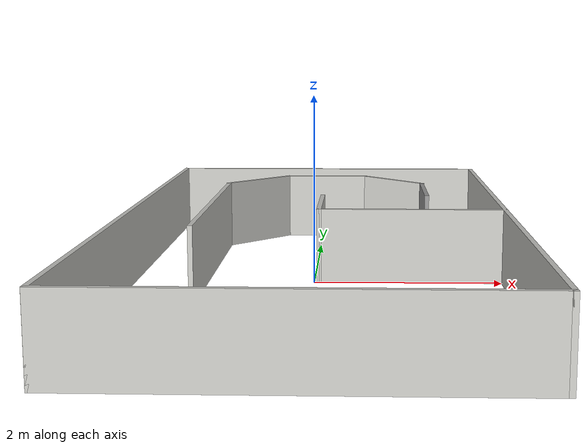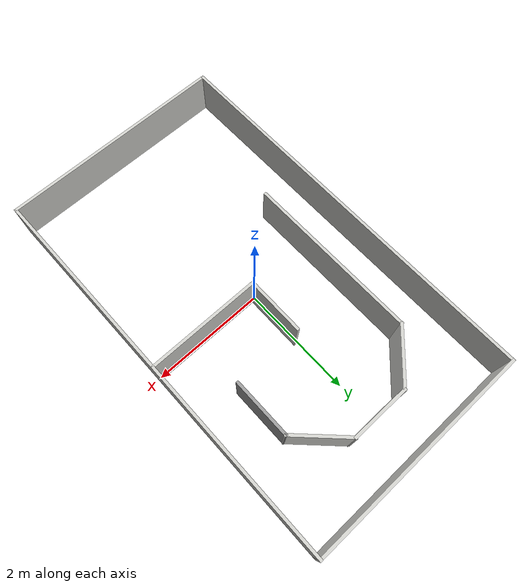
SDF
<?xml version='1.0'?>
<sdf version='1.6'>
  <model name='ground'>
    <pose frame=''>0.0375 -0.003 0 0 -0 0</pose>
    <link name='Wall_11'>
      <collision name='Wall_11_Collision'>
        <geometry>
          <box>
            <size>7.05 0.05 0.8</size>
          </box>
        </geometry>
        <pose frame=''>0 0 0.4 0 -0 0</pose>
      </collision>
      <visual name='Wall_11_Visual'>
        <pose frame=''>0 0 0.4 0 -0 0</pose>
        <geometry>
          <box>
            <size>7.05 0.05 0.8</size>
          </box>
        </geometry>
        <material>
          <script>
            <uri>file://media/materials/scripts/gazebo.material</uri>
            <name>Gazebo/CeilingTiled</name>
          </script>
          <ambient>1 1 1 1</ambient>
        </material>
        <meta>
          <layer>0</layer>
        </meta>
      </visual>
      <pose frame=''>-1.9875 0 0 0 0 -1.5708</pose>
    </link>
    <link name='Wall_13'>
      <collision name='Wall_13_Collision'>
        <geometry>
          <box>
            <size>3.05542 0.05 0.8</size>
          </box>
        </geometry>
        <pose frame=''>0 0 0.4 0 -0 0</pose>
      </collision>
      <visual name='Wall_13_Visual'>
        <pose frame=''>0 0 0.4 0 -0 0</pose>
        <geometry>
          <box>
            <size>3.05542 0.05 0.8</size>
          </box>
        </geometry>
        <material>
          <script>
            <uri>file://media/materials/scripts/gazebo.material</uri>
            <name>Gazebo/CeilingTiled</name>
          </script>
          <ambient>1 1 1 1</ambient>
        </material>
        <meta>
          <layer>0</layer>
        </meta>
      </visual>
      <pose frame=''>-1.2005 0.5035 0 0 -0 1.5708</pose>
    </link>
    <link name='Wall_15'>
      <collision name='Wall_15_Collision'>
        <geometry>
          <box>
            <size>1.05361 0.05 0.8</size>
          </box>
        </geometry>
        <pose frame=''>0 0 0.4 0 -0 0</pose>
      </collision>
      <visual name='Wall_15_Visual'>
        <pose frame=''>0 0 0.4 0 -0 0</pose>
        <geometry>
          <box>
            <size>1.05361 0.05 0.8</size>
          </box>
        </geometry>
        <material>
          <script>
            <uri>file://media/materials/scripts/gazebo.material</uri>
            <name>Gazebo/CeilingTiled</name>
          </script>
          <ambient>1 1 1 1</ambient>
        </material>
        <meta>
          <layer>0</layer>
        </meta>
      </visual>
      <pose frame=''>-0.8465 2.362 0 0 -0 0.788215</pose>
    </link>
    <link name='Wall_17'>
      <collision name='Wall_17_Collision'>
        <geometry>
          <box>
            <size>1.05915 0.05 0.8</size>
          </box>
        </geometry>
        <pose frame=''>0 0 0.4 0 -0 0</pose>
      </collision>
      <visual name='Wall_17_Visual'>
        <pose frame=''>0 0 0.4 0 -0 0</pose>
        <geometry>
          <box>
            <size>1.05915 0.05 0.8</size>
          </box>
        </geometry>
        <material>
          <script>
            <uri>file://media/materials/scripts/gazebo.material</uri>
            <name>Gazebo/CeilingTiled</name>
          </script>
          <ambient>1 1 1 1</ambient>
        </material>
        <meta>
          <layer>0</layer>
        </meta>
      </visual>
      <pose frame=''>0.012 2.718 0 0 -0 0</pose>
    </link>
    <link name='Wall_19'>
      <collision name='Wall_19_Collision'>
        <geometry>
          <box>
            <size>1.03436 0.05 0.8</size>
          </box>
        </geometry>
        <pose frame=''>0 0 0.4 0 -0 0</pose>
      </collision>
      <visual name='Wall_19_Visual'>
        <pose frame=''>0 0 0.4 0 -0 0</pose>
        <geometry>
          <box>
            <size>1.03436 0.05 0.8</size>
          </box>
        </geometry>
        <material>
          <script>
            <uri>file://media/materials/scripts/gazebo.material</uri>
            <name>Gazebo/CeilingTiled</name>
          </script>
          <ambient>1 1 1 1</ambient>
        </material>
        <meta>
          <layer>0</layer>
        </meta>
      </visual>
      <pose frame=''>0.8685 2.374 0 0 0 -0.773904</pose>
    </link>
    <link name='Wall_21'>
      <collision name='Wall_21_Collision'>
        <geometry>
          <box>
            <size>1.05629 0.05 0.8</size>
          </box>
        </geometry>
        <pose frame=''>0 0 0.4 0 -0 0</pose>
      </collision>
      <visual name='Wall_21_Visual'>
        <pose frame=''>0 0 0.4 0 -0 0</pose>
        <geometry>
          <box>
            <size>1.05629 0.05 0.8</size>
          </box>
        </geometry>
        <material>
          <script>
            <uri>file://media/materials/scripts/gazebo.material</uri>
            <name>Gazebo/Grey</name>
          </script>
          <ambient>1 1 1 1</ambient>
        </material>
        <meta>
          <layer>0</layer>
        </meta>
      </visual>
      <pose frame=''>1.2205 1.527 0 0 0 -1.5708</pose>
    </link>
    <link name='Wall_23'>
      <collision name='Wall_23_Collision'>
        <geometry>
          <box>
            <size>1.05 0.05 0.8</size>
          </box>
        </geometry>
        <pose frame=''>0 0 0.4 0 -0 0</pose>
      </collision>
      <visual name='Wall_23_Visual'>
        <pose frame=''>0 0 0.4 0 -0 0</pose>
        <geometry>
          <box>
            <size>1.05 0.05 0.8</size>
          </box>
        </geometry>
        <material>
          <script>
            <uri>file://media/materials/scripts/gazebo.material</uri>
            <name>Gazebo/CeilingTiled</name>
          </script>
          <ambient>1 1 1 1</ambient>
        </material>
        <meta>
          <layer>0</layer>
        </meta>
      </visual>
      <pose frame=''>0.0125 0.513 0 0 0 -1.5768</pose>
    </link>
    <link name='Wall_24'>
      <collision name='Wall_24_Collision'>
        <geometry>
          <box>
            <size>2.021 0.05 0.8</size>
          </box>
        </geometry>
        <pose frame=''>0 0 0.4 0 -0 0</pose>
      </collision>
      <visual name='Wall_24_Visual'>
        <pose frame=''>0 0 0.4 0 -0 0</pose>
        <geometry>
          <box>
            <size>2.021 0.05 0.8</size>
          </box>
        </geometry>
        <material>
          <script>
            <uri>file://media/materials/scripts/gazebo.material</uri>
            <name>Gazebo/CeilingTiled</name>
          </script>
          <ambient>1 1 1 1</ambient>
        </material>
        <meta>
          <layer>0</layer>
        </meta>
      </visual>
      <pose frame=''>0.995 0.013 0 0 -0 0</pose>
    </link>
    <link name='Wall_5'>
      <collision name='Wall_5_Collision'>
        <geometry>
          <box>
            <size>4.02425 0.05 0.8</size>
          </box>
        </geometry>
        <pose frame=''>0 0 0.4 0 -0 0</pose>
      </collision>
      <visual name='Wall_5_Visual'>
        <pose frame=''>0 0 0.4 0 -0 0</pose>
        <geometry>
          <box>
            <size>4.02425 0.05 0.8</size>
          </box>
        </geometry>
        <material>
          <script>
            <uri>file://media/materials/scripts/gazebo.material</uri>
            <name>Gazebo/CeilingTiled</name>
          </script>
          <ambient>1 1 1 1</ambient>
        </material>
        <meta>
          <layer>0</layer>
        </meta>
      </visual>
      <pose frame=''>0 -3.5 0 0 -0 0</pose>
    </link>
    <link name='Wall_7'>
      <collision name='Wall_7_Collision'>
        <geometry>
          <box>
            <size>7.05 0.05 0.8</size>
          </box>
        </geometry>
        <pose frame=''>0 0 0.4 0 -0 0</pose>
      </collision>
      <visual name='Wall_7_Visual'>
        <pose frame=''>0 0 0.4 0 -0 0</pose>
        <geometry>
          <box>
            <size>7.05 0.05 0.8</size>
          </box>
        </geometry>
        <material>
          <script>
            <uri>file://media/materials/scripts/gazebo.material</uri>
            <name>Gazebo/CeilingTiled</name>
          </script>
          <ambient>1 1 1 1</ambient>
        </material>
        <meta>
          <layer>0</layer>
        </meta>
      </visual>
      <pose frame=''>1.9875 0 0 0 -0 1.5708</pose>
    </link>
    <link name='Wall_9'>
      <collision name='Wall_9_Collision'>
        <geometry>
          <box>
            <size>4.025 0.05 0.8</size>
          </box>
        </geometry>
        <pose frame=''>0 0 0.4 0 -0 0</pose>
      </collision>
      <visual name='Wall_9_Visual'>
        <pose frame=''>0 0 0.4 0 -0 0</pose>
        <geometry>
          <box>
            <size>4.025 0.05 0.8</size>
          </box>
        </geometry>
        <material>
          <script>
            <uri>file://media/materials/scripts/gazebo.material</uri>
            <name>Gazebo/CeilingTiled</name>
          </script>
          <ambient>1 1 1 1</ambient>
        </material>
        <meta>
          <layer>0</layer>
        </meta>
      </visual>
      <pose frame=''>0 3.5 0 0 -0 3.14159</pose>
    </link>
    <static>1</static>
  </model>
</sdf>
